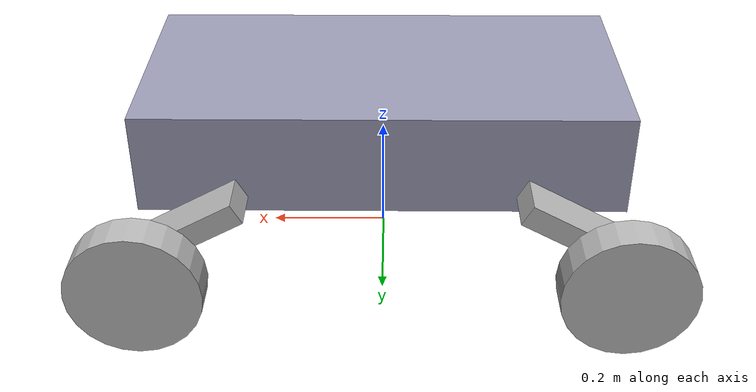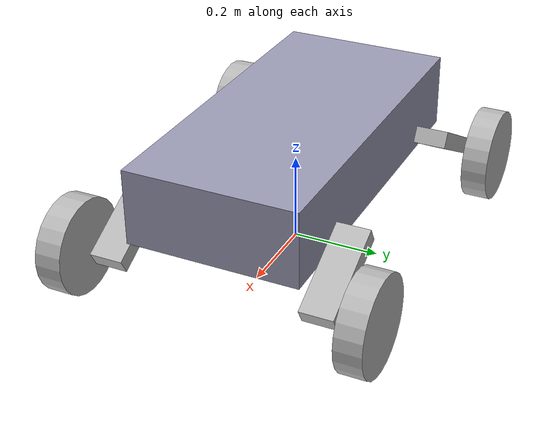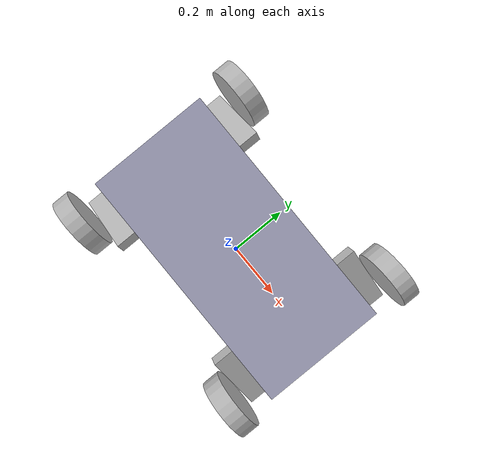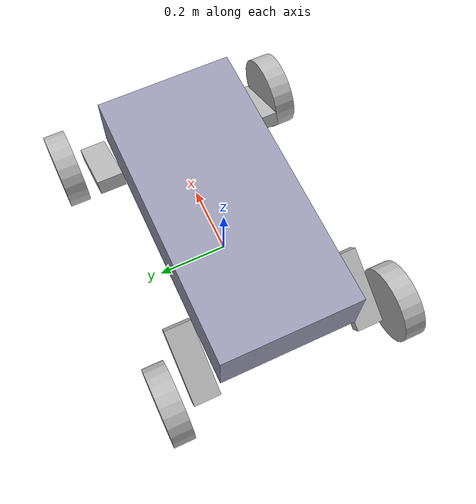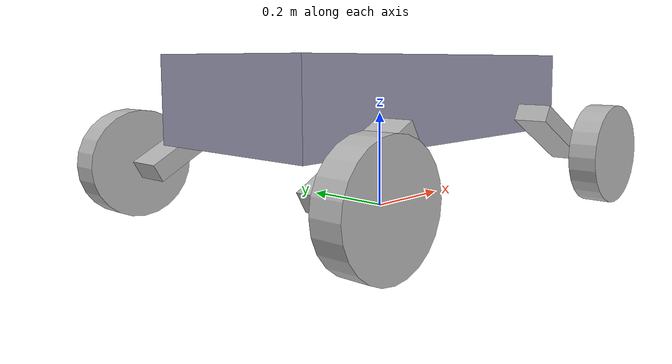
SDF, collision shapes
<?xml version="1.0" encoding="UTF-8"?>
<sdf version='1.10'>
  <model name='elm4'>
    <self_collide>false</self_collide>
    <static>false</static>
    <link name="base_link">
      <pose>0.0 0.0 0.15 0 0 0</pose>
      <inertial>
        <mass>18.71</mass>
        <inertia>
          <ixx>0.3986</ixx>
          <ixy>0</ixy>
          <ixz>0</ixz>
          <iyy>1.092</iyy>
          <iyz>0</iyz>
          <izz>1.337</izz>
        </inertia>
      </inertial>
      <gravity>true</gravity>
      <velocity_decay/>
      <collision name="Base_Collision">
        <pose>0 0 .0875 0 0 0</pose>
        <geometry>
          <box>
            <size>0.8 0.389 0.171</size>
          </box>
        </geometry>
        <surface>
          <contact>
            <ode>
              <min_depth>0.001</min_depth>
              <max_vel>0</max_vel>
            </ode>
          </contact>
        </surface>
      </collision>
      <visual name="BaseMetal">
        <pose>0 0 0 0 0 0</pose>
        <geometry>
          <mesh>
            <scale>1 1 1</scale>
            <uri>model://elm4/meshes/BaseMetal.dae</uri>
          </mesh>
        </geometry>
      </visual>
      <visual name="BaseRubber">
        <pose>0 0 0 0 0 0</pose>
        <geometry>
          <mesh>
            <scale>1 1 1</scale>
            <uri>model://elm4/meshes/BaseRubber.dae</uri>
          </mesh>
        </geometry>
      </visual>
      <visual name="BaseYellowPlasticTop">
        <pose>0 0 0 0 0 0</pose>
        <geometry>
          <mesh>
            <scale>1 1 1</scale>
            <uri>model://elm4/meshes/BasePlastic.dae</uri>
          </mesh>
        </geometry>
      </visual>
      <visual name="BaseClearPlasticGuard">
        <pose>0 0 0 0 0 0</pose>
        <cast_shadow>0</cast_shadow>
        <transparency>.5</transparency>
        <geometry>
          <mesh>
            <scale>1 1 1</scale>
            <uri>model://elm4/meshes/BaseClear.dae</uri>
          </mesh>
        </geometry>
        <material>
          <diffuse>0.6 0.6 0.7 1.0</diffuse>
          <ambient>0.6 0.6 0.7 1.0</ambient>
        </material>
      </visual>
    </link>
    <link name="base_footprint"/>
    <link name="lidar_link">
      <pose relative_to="base_link">0 0 0.2 0 0 0</pose>
      <inertial>
        <mass>0.17</mass>
        <inertia>
          <ixx>0.0001926666667</ixx>
          <ixy>0</ixy>
          <ixz>0</ixz>
          <iyy>0.0001224141667</iyy>
          <iyz>0</iyz>
          <izz>0.0002130808333</izz>
        </inertia>
      </inertial>
      <visual name="visual">
        <pose>0 0 -.028 0 0 0</pose>
        <geometry>
          <mesh>
            <uri>model://elm4/meshes/STL27L.dae</uri>
          </mesh>
        </geometry>
      </visual>
      <sensor name="lidar" type="gpu_lidar">
        <lidar>
          <scan>
            <horizontal>
              <samples>360</samples>
              <resolution>1</resolution>
              <min_angle>-3.14159265359</min_angle>
              <max_angle>3.14159265359</max_angle>
            </horizontal>
          </scan>
          <range>
            <min>0.15</min>
            <max>10</max>
            <resolution>0.01</resolution>
          </range>
        </lidar>
        <gz_frame_id>lidar_link</gz_frame_id>
        <alwaysOn>1</alwaysOn>
        <visualize>true</visualize>
        <update_rate>10</update_rate>
      </sensor>
    </link>
    <joint name="lidar_joint" type="fixed">
      <parent>base_link</parent>
      <child>lidar_link</child>
    </joint>
    <link name="sensors">
      <pose relative_to="base_link">0 0 0.22 0 0 0</pose>
      <inertial>
        <mass>0.0000001</mass>
        <inertia>
          <ixx>0.000000000001</ixx>
          <ixy>0</ixy>
          <ixz>0</ixz>
          <iyy>0.000000000001</iyy>
          <iyz>0</iyz>
          <izz>0.000000000001</izz>
        </inertia>
      </inertial>
      <sensor name="imu_sensor" type="imu">
        <always_on>1</always_on>
        <update_rate>250</update_rate>
      </sensor>
      <sensor name="mag_sensor" type="magnetometer">
        <always_on>1</always_on>
        <update_rate>50</update_rate>
      </sensor>
      <sensor name="altimeter_sensor" type="altimeter">
        <always_on>1</always_on>
        <update_rate>50</update_rate>
      </sensor>
      <sensor name="navsat_sensor" type="navsat">
        <always_on>1</always_on>
        <update_rate>10</update_rate>
        <navsat>
          <position_sensing></position_sensing>
          <velocity_sensing></velocity_sensing>
        </navsat>
      </sensor>
    </link>
    <link name="FrontLeftArm">
      <pose relative_to="FrontLeftArmJoint">0 0 0 0 0 0</pose>
      <inertial>
        <mass>1.16</mass>
        <inertia>
          <ixx>0.006274</ixx>
          <ixy>0.002744</ixy>
          <ixz>0</ixz>
          <iyy>0.007678</iyy>
          <iyz>0</iyz>
          <izz>0.009408</izz>
        </inertia>
      </inertial>
      <gravity>true</gravity>
      <velocity_decay/>
      <visual name="FrontLeftArmMetal_Visual">
        <pose>0 0 0 0 0 0</pose>
        <geometry>
          <mesh>
            <scale>1 1 1</scale>
            <uri>model://elm4/meshes/ArmLeftMetal.dae</uri>
          </mesh>
        </geometry>
      </visual>
      <visual name="FrontLeftArmPlastic_Visual">
        <pose>0 0 0 0 0 0</pose>
        <geometry>
          <mesh>
            <scale>1 1 1</scale>
            <uri>model://elm4/meshes/ArmLeftPlastic.dae</uri>
          </mesh>
        </geometry>
      </visual>
      <collision name="FrontLeftArm_Collision">
        <pose>0.055 0 -.0305 0 .505 0</pose>
        <geometry>
          <box>
            <size>.21 .075 .038</size>
          </box>
        </geometry>
        <surface>
          <contact>
            <ode>
              <min_depth>0.001</min_depth>
              <max_vel>0</max_vel>
            </ode>
          </contact>
        </surface>
      </collision>
    </link>
    <link name="FrontLeftHubMotorWheel">
      <pose relative_to="FrontLeftHubMotorWheelJoint">0 0 0 0 0 0</pose>
      <inertial>
        <mass>3.854</mass>
        <inertia>
          <ixx>0.009002</ixx>
          <ixy>0.0006021</ixy>
          <ixz>0</ixz>
          <iyy>0.01313</iyy>
          <iyz>0</iyz>
          <izz>0.009003</izz>
        </inertia>
      </inertial>
      <gravity>true</gravity>
      <velocity_decay/>
      <visual name="FrontLeftHubMotorWheelMetal_Visual">
        <pose>0 0 0 0 0 3.14159265359</pose>
        <geometry>
          <mesh>
            <scale>1 1 1</scale>
            <uri>model://elm4/meshes/HubMotor.dae</uri>
          </mesh>
        </geometry>
      </visual>
      <visual name="FrontLeftHubMotorWheelRubber_Visual">
        <pose>0 0 0 0 0 3.14159265359</pose>
        <geometry>
          <mesh>
            <scale>1 1 1</scale>
            <uri>model://elm4/meshes/RubberWheel.dae</uri>
          </mesh>
        </geometry>
      </visual>
      <collision name="FrontLeftHubMotorWheel_Collision">
        <pose>0 0 0 1.57079632679 0 0</pose>
        <geometry>
          <cylinder>
            <radius>.108</radius>
            <length>.06</length>
          </cylinder>
        </geometry>
        <surface>
          <contact>
            <ode>
              <min_depth>0.001</min_depth>
              <max_vel>0</max_vel>
            </ode>
          </contact>
          <friction>
            <ode>
              <mu>1.0</mu>
              <mu2>0.8</mu2>
              <fdir1>1 0 0</fdir1>
            </ode>
          </friction>
        </surface>
      </collision>
    </link>
    <joint name="FrontLeftArmJoint" type="revolute">
      <parent>base_link</parent>
      <child>FrontLeftArm</child>
      <pose relative_to="base_link">.263 .238 .029 0 0 0</pose>
      <axis>
        <xyz>0 1 0</xyz>
        <limit>
          <lower>-0.5</lower>
          <upper>0.5</upper>
        </limit>
        <dynamics>
          <spring_reference>0</spring_reference>
          <spring_stiffness>300</spring_stiffness>
        </dynamics>
      </axis>
    </joint>
    <joint name="FrontLeftHubMotorWheelJoint" type="revolute">
      <parent>FrontLeftArm</parent>
      <child>FrontLeftHubMotorWheel</child>
      <pose relative_to="FrontLeftArm">.11861 .095 -.07453 0 0 0</pose>
      <axis>
        <xyz>0 1 0</xyz>
        <limit>
          <lower>-1e+16</lower>
          <upper>1e+16</upper>
        </limit>
      </axis>
    </joint>
    <link name="BackRightArm">
      <pose relative_to="BackRightArmJoint">0 0 0 0 0 0</pose>
      <inertial>
        <mass>1.16</mass>
        <inertia>
          <ixx>0.006274</ixx>
          <ixy>0.002744</ixy>
          <ixz>0</ixz>
          <iyy>0.007678</iyy>
          <iyz>0</iyz>
          <izz>0.009408</izz>
        </inertia>
      </inertial>
      <gravity>true</gravity>
      <velocity_decay/>
      <visual name="BackRightArmMetal_Visual">
        <pose>0 0 0 0 0 0</pose>
        <geometry>
          <mesh>
            <scale>1 1 1</scale>
            <uri>model://elm4/meshes/ArmLeftMetal.dae</uri>
          </mesh>
        </geometry>
      </visual>
      <visual name="BackRightArmPlastic_Visual">
        <pose>0 0 0 0 0 0</pose>
        <geometry>
          <mesh>
            <scale>1 1 1</scale>
            <uri>model://elm4/meshes/ArmLeftPlastic.dae</uri>
          </mesh>
        </geometry>
      </visual>
      <collision name="BackRightArm_Collision">
        <pose>0.055 0 -.0305 0 .505 0</pose>
        <geometry>
          <box>
            <size>.21 .075 .038</size>
          </box>
        </geometry>
        <surface>
          <contact>
            <ode>
              <min_depth>0.001</min_depth>
              <max_vel>0</max_vel>
            </ode>
          </contact>
        </surface>
      </collision>
    </link>
    <link name="BackRightHubMotorWheel">
      <pose relative_to="BackRightHubMotorWheelJoint">0 0 0 0 0 0</pose>
      <inertial>
        <mass>3.854</mass>
        <inertia>
          <ixx>0.009002</ixx>
          <ixy>0.0006021</ixy>
          <ixz>0</ixz>
          <iyy>0.01313</iyy>
          <iyz>0</iyz>
          <izz>0.009003</izz>
        </inertia>
      </inertial>
      <gravity>true</gravity>
      <velocity_decay/>
      <visual name="BackRightHubMotorWheelMetal_Visual">
        <pose>0 0 0 0 0 0</pose>
        <geometry>
          <mesh>
            <scale>1 1 1</scale>
            <uri>model://elm4/meshes/HubMotor.dae</uri>
          </mesh>
        </geometry>
      </visual>
      <visual name="BackRightHubMotorWheelRubber_Visual">
        <pose>0 0 0 0 0 0</pose>
        <geometry>
          <mesh>
            <scale>1 1 1</scale>
            <uri>model://elm4/meshes/RubberWheel.dae</uri>
          </mesh>
        </geometry>
      </visual>
      <collision name="BackRightHubMotorWheel_Collision">
        <pose>0 0 0 1.57079632679 0 0</pose>
        <geometry>
          <cylinder>
            <radius>.108</radius>
            <length>.06</length>
          </cylinder>
        </geometry>
        <surface>
          <contact>
            <ode>
              <min_depth>0.001</min_depth>
              <max_vel>0</max_vel>
            </ode>
          </contact>
          <friction>
            <ode>
              <mu>1.0</mu>
              <mu2>0.8</mu2>
              <fdir1>1 0 0</fdir1>
            </ode>
          </friction>
        </surface>
      </collision>
    </link>
    <joint name="BackRightArmJoint" type="revolute">
      <parent>base_link</parent>
      <child>BackRightArm</child>
      <pose relative_to="base_link">-.263 -.238 .029 0 0 3.14159265359</pose>
      <axis>
        <xyz>0 1 0</xyz>
        <limit>
          <lower>-0.5</lower>
          <upper>0.5</upper>
        </limit>
        <dynamics>
          <spring_reference>0</spring_reference>
          <spring_stiffness>300</spring_stiffness>
        </dynamics>
      </axis>
    </joint>
    <joint name="BackRightHubMotorWheelJoint" type="revolute">
      <parent>BackRightArm</parent>
      <child>BackRightHubMotorWheel</child>
      <pose relative_to="BackRightArm">.11861 .095 -.07453 0 0 3.14159265359</pose>
      <axis>
        <xyz>0 1 0</xyz>
        <limit>
          <lower>-1e+16</lower>
          <upper>1e+16</upper>
        </limit>
      </axis>
    </joint>
    <link name="FrontRightArm">
      <pose relative_to="FrontRightArmJoint">0 0 0 0 0 0</pose>
      <inertial>
        <mass>1.16</mass>
        <inertia>
          <ixx>0.006274</ixx>
          <ixy>0.002744</ixy>
          <ixz>0</ixz>
          <iyy>0.007678</iyy>
          <iyz>0</iyz>
          <izz>0.009408</izz>
        </inertia>
      </inertial>
      <gravity>true</gravity>
      <velocity_decay/>
      <visual name="FrontRightArmMetal_Visual">
        <pose>0 0 0 0 -.017 0</pose>
        <geometry>
          <mesh>
            <scale>1 1 1</scale>
            <uri>model://elm4/meshes/ArmRightMetal.dae</uri>
          </mesh>
        </geometry>
      </visual>
      <visual name="FrontRightArmPlastic_Visual">
        <pose>0 0 0 0 -.017 0</pose>
        <geometry>
          <mesh>
            <scale>1 1 1</scale>
            <uri>model://elm4/meshes/ArmRightPlastic.dae</uri>
          </mesh>
        </geometry>
      </visual>
      <collision name="FrontRightArm_Collision">
        <pose>0.055 0 -.0305 0 .505 0</pose>
        <geometry>
          <box>
            <size>.21 .075 .038</size>
          </box>
        </geometry>
        <surface>
          <contact>
            <ode>
              <min_depth>0.001</min_depth>
              <max_vel>0</max_vel>
            </ode>
          </contact>
        </surface>
      </collision>
    </link>
    <link name="FrontRightHubMotorWheel">
      <pose relative_to="FrontRightHubMotorWheelJoint">0 0 0 0 0 0</pose>
      <inertial>
        <mass>3.854</mass>
        <inertia>
          <ixx>0.009002</ixx>
          <ixy>0.0006021</ixy>
          <ixz>0</ixz>
          <iyy>0.01313</iyy>
          <iyz>0</iyz>
          <izz>0.009003</izz>
        </inertia>
      </inertial>
      <gravity>true</gravity>
      <velocity_decay/>
      <visual name="FrontRightHubMotorWheelMetal_Visual">
        <pose>0 0 0 0 0 0</pose>
        <geometry>
          <mesh>
            <scale>1 1 1</scale>
            <uri>model://elm4/meshes/HubMotor.dae</uri>
          </mesh>
        </geometry>
      </visual>
      <visual name="FrontRightHubMotorWheelRubber_Visual">
        <pose>0 0 0 0 0 0</pose>
        <geometry>
          <mesh>
            <scale>1 1 1</scale>
            <uri>model://elm4/meshes/RubberWheel.dae</uri>
          </mesh>
        </geometry>
      </visual>
      <collision name="FrontRightHubMotorWheel_Collision">
        <pose>0 0 0 1.57079632679 0 0</pose>
        <geometry>
          <cylinder>
            <radius>.108</radius>
            <length>.06</length>
          </cylinder>
        </geometry>
        <surface>
          <contact>
            <ode>
              <min_depth>0.001</min_depth>
              <max_vel>0</max_vel>
            </ode>
          </contact>
          <friction>
            <ode>
              <mu>1.0</mu>
              <mu2>0.8</mu2>
              <fdir1>1 0 0</fdir1>
            </ode>
          </friction>
        </surface>
      </collision>
    </link>
    <joint name="FrontRightArmJoint" type="revolute">
      <parent>base_link</parent>
      <child>FrontRightArm</child>
      <pose relative_to="base_link">.263 -.238 .029 0 0 0</pose>
      <axis>
        <xyz>0 1 0</xyz>
        <limit>
          <lower>-0.5</lower>
          <upper>0.5</upper>
        </limit>
        <dynamics>
          <spring_reference>0</spring_reference>
          <spring_stiffness>300</spring_stiffness>
        </dynamics>
      </axis>
    </joint>
    <joint name="FrontRightHubMotorWheelJoint" type="revolute">
      <parent>FrontRightArm</parent>
      <child>FrontRightHubMotorWheel</child>
      <pose relative_to="FrontRightArm">.11861 -.095 -.07453 0 0 0</pose>
      <axis>
        <xyz>0 1 0</xyz>
        <limit>
          <lower>-1e+16</lower>
          <upper>1e+16</upper>
        </limit>
      </axis>
    </joint>
        <link name="BackLeftArm">
      <pose relative_to="BackLeftArmJoint">0 0 0 0 0 0</pose>
      <inertial>
        <mass>1.16</mass>
        <inertia>
          <ixx>0.006274</ixx>
          <ixy>0.002744</ixy>
          <ixz>0</ixz>
          <iyy>0.007678</iyy>
          <iyz>0</iyz>
          <izz>0.009408</izz>
        </inertia>
      </inertial>
      <gravity>true</gravity>
      <velocity_decay/>
      <visual name="BackLeftArmMetal_Visual">
        <pose>0 0 0 0 -.017 0</pose>
        <geometry>
          <mesh>
            <scale>1 1 1</scale>
            <uri>model://elm4/meshes/ArmRightMetal.dae</uri>
          </mesh>
        </geometry>
      </visual>
      <visual name="BackLeftArmPlastic_Visual">
        <pose>0 0 0 0 -.017 0</pose>
        <geometry>
          <mesh>
            <scale>1 1 1</scale>
            <uri>model://elm4/meshes/ArmRightPlastic.dae</uri>
          </mesh>
        </geometry>
      </visual>
      <collision name="BackLeftArm_Collision">
        <pose>0.055 0 -.0305 0 .505 0</pose>
        <geometry>
          <box>
            <size>.21 .075 .038</size>
          </box>
        </geometry>
        <surface>
          <contact>
            <ode>
              <min_depth>0.001</min_depth>
              <max_vel>0</max_vel>
            </ode>
          </contact>
        </surface>
      </collision>
    </link>
    <link name="BackLeftHubMotorWheel">
      <pose relative_to="BackLeftHubMotorWheelJoint">0 0 0 0 0 0</pose>
      <inertial>
        <mass>3.854</mass>
        <inertia>
          <ixx>0.009002</ixx>
          <ixy>0.0006021</ixy>
          <ixz>0</ixz>
          <iyy>0.01313</iyy>
          <iyz>0</iyz>
          <izz>0.009003</izz>
        </inertia>
      </inertial>
      <gravity>true</gravity>
      <velocity_decay/>
      <visual name="BackLeftHubMotorWheelMetal_Visual">
        <pose>0 0 0 0 0 3.14159265359</pose>
        <geometry>
          <mesh>
            <scale>1 1 1</scale>
            <uri>model://elm4/meshes/HubMotor.dae</uri>
          </mesh>
        </geometry>
      </visual>
      <visual name="BackLeftHubMotorWheelRubber_Visual">
        <pose>0 0 0 0 0 3.14159265359</pose>
        <geometry>
          <mesh>
            <scale>1 1 1</scale>
            <uri>model://elm4/meshes/RubberWheel.dae</uri>
          </mesh>
        </geometry>
      </visual>
      <collision name="BackLeftHubMotorWheel_Collision">
        <pose>0 0 0 1.57079632679 0 0</pose>
        <geometry>
          <cylinder>
            <radius>.108</radius>
            <length>.06</length>
          </cylinder>
        </geometry>
        <surface>
          <contact>
            <ode>
              <min_depth>0.001</min_depth>
              <max_vel>0</max_vel>
            </ode>
          </contact>
          <friction>
            <ode>
              <mu>1.0</mu>
              <mu2>0.8</mu2>
              <fdir1>1 0 0</fdir1>
            </ode>
          </friction>
        </surface>
      </collision>
    </link>
    <joint name="BackLeftArmJoint" type="revolute">
      <parent>base_link</parent>
      <child>BackLeftArm</child>
      <pose relative_to="base_link">-.263 .238 .029 0 0 3.14159265359</pose>
      <axis>
        <xyz>0 1 0</xyz>
        <limit>
          <lower>-0.5</lower>
          <upper>0.5</upper>
        </limit>
        <dynamics>
          <spring_reference>0</spring_reference>
          <spring_stiffness>300</spring_stiffness>
        </dynamics>
      </axis>
    </joint>
    <joint name="BackLeftHubMotorWheelJoint" type="revolute">
      <parent>BackLeftArm</parent>
      <child>BackLeftHubMotorWheel</child>
      <pose relative_to="BackLeftArm">.11861 -.095 -.07453 0 0 3.14159265359</pose>
      <axis>
        <xyz>0 1 0</xyz>
        <limit>
          <lower>-1e+16</lower>
          <upper>1e+16</upper>
        </limit>
      </axis>
    </joint>
    <joint name="base_joint" type="fixed">
      <parent>base_footprint</parent>
      <child>base_link</child>
      <pose>0.0 0.0 -.15 0 0 0</pose>
    </joint>
    <joint name="SensorsJoint" type="fixed">
        <parent>base_link</parent>
        <child>sensors</child>
        <pose>0.0 0.0 0.0 0 0 0</pose>
    </joint>
    <plugin
        filename="gz-sim-joint-controller-system"
        name="gz::sim::systems::JointController">
      <joint_name>BackRightHubMotorWheelJoint</joint_name>
      <use_actuator_msg>true</use_actuator_msg>
      <actuator_number>0</actuator_number>
    </plugin>
    <plugin
        filename="gz-sim-joint-controller-system"
        name="gz::sim::systems::JointController">
      <joint_name>BackLeftHubMotorWheelJoint</joint_name>
      <use_actuator_msg>true</use_actuator_msg>
      <actuator_number>1</actuator_number>
    </plugin>
    <plugin
        filename="gz-sim-joint-controller-system"
        name="gz::sim::systems::JointController">
      <joint_name>FrontLeftHubMotorWheelJoint</joint_name>
      <use_actuator_msg>true</use_actuator_msg>
      <actuator_number>2</actuator_number>
    </plugin>
    <plugin
        filename="gz-sim-joint-controller-system"
        name="gz::sim::systems::JointController">
      <joint_name>FrontRightHubMotorWheelJoint</joint_name>
      <use_actuator_msg>true</use_actuator_msg>
      <actuator_number>3</actuator_number>
    </plugin>
    <plugin
      filename="gz-sim-odometry-publisher-system"
      name="gz::sim::systems::OdometryPublisher">
      <xyz_offset>0 0 0</xyz_offset>
      <rpy_offset>0 0 0</rpy_offset>
      <gaussian_noise>0</gaussian_noise>
      <robot_base_frame>base_link</robot_base_frame>
      <dimensions>3</dimensions>
      <odom_publish_frequency>30</odom_publish_frequency>
      <odom_frame>odom</odom_frame>
    </plugin>
    <plugin
      filename="gz-sim-linearbatteryplugin-system"
      name="gz::sim::systems::LinearBatteryPlugin">
      <battery_name>linear_battery</battery_name>
      <voltage>43.6</voltage>
      <open_circuit_voltage_constant_coef>43.6</open_circuit_voltage_constant_coef>
      <open_circuit_voltage_linear_coef>-3.0</open_circuit_voltage_linear_coef>
      <initial_charge>4.8</initial_charge>
      <capacity>5.0</capacity>
      <resistance>0.07</resistance>
      <smooth_current_tau>2.0</smooth_current_tau>
      <soc_threshold>0.51</soc_threshold>
      <power_load>90.0</power_load>
      <fix_issue_225>true</fix_issue_225>
      <start_draining>true</start_draining>
    </plugin>
    <plugin
      filename="gz-sim-joint-state-publisher-system"
      name="gz::sim::systems::JointStatePublisher">
      <joint_name>BackRightHubMotorWheelJoint</joint_name>
      <joint_name>BackLeftHubMotorWheelJoint</joint_name>
      <joint_name>FrontRightHubMotorWheelJoint</joint_name>
      <joint_name>FrontLeftHubMotorWheelJoint</joint_name>
    </plugin>
  </model>
</sdf>
